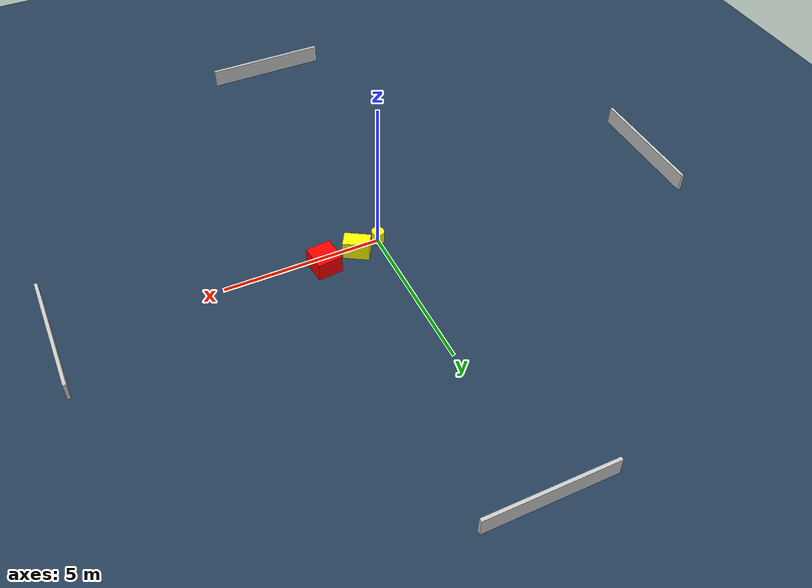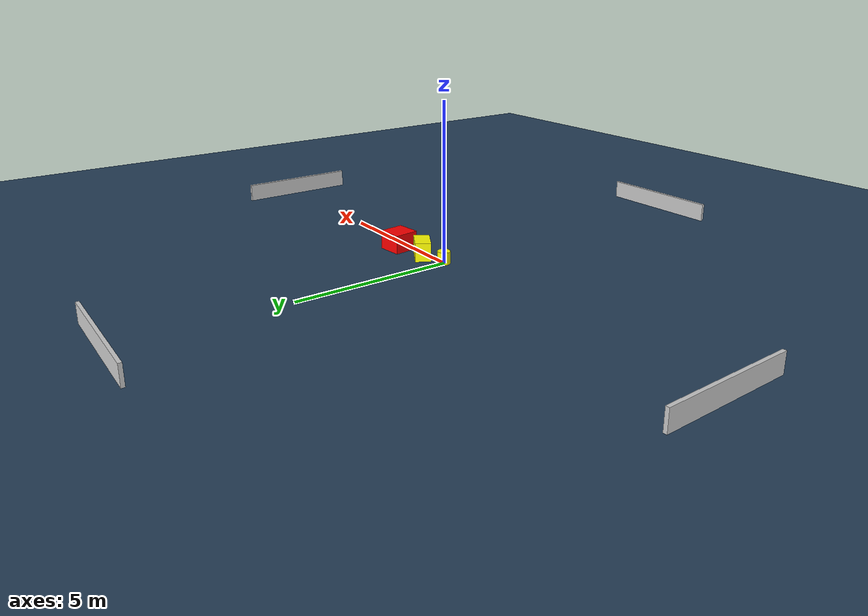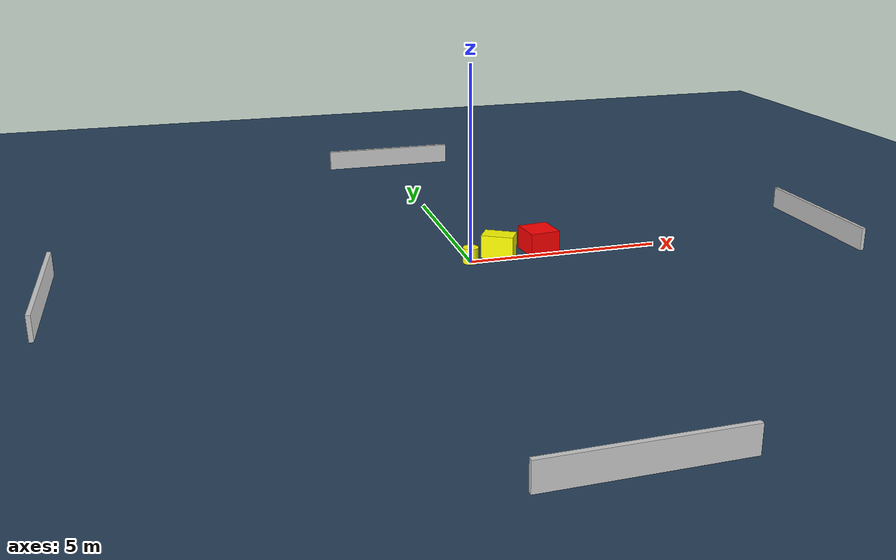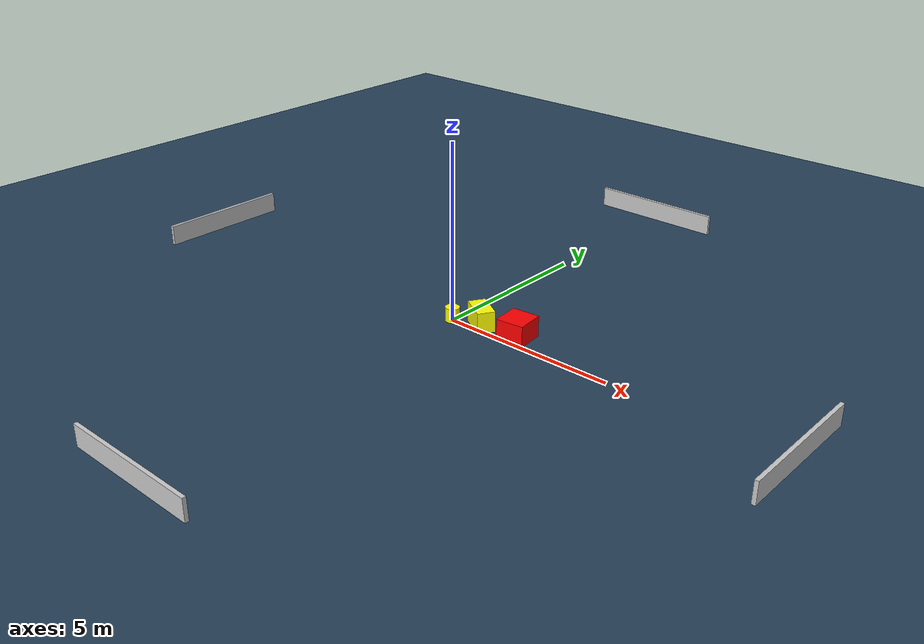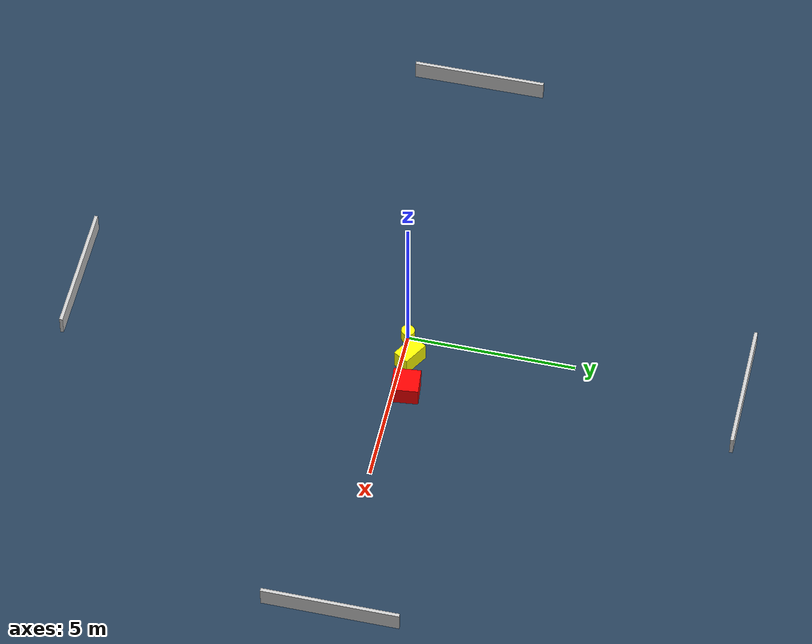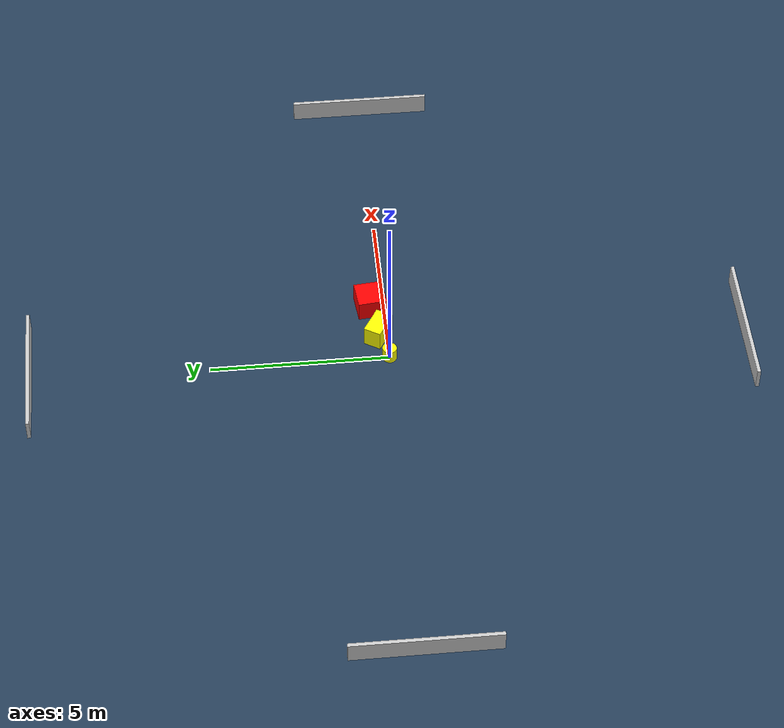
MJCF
<?xml version="1.0" ?>
<mujoco model="generated_environment">
  <option timestep="0.01" integrator="RK4" cone="elliptic"/>
  <default>
    <geom density="1"/>
  </default>
  <asset>
    <texture builtin="gradient" height="3072" name="skybox" rgb1="0.3 0.5 0.7" rgb2="0 0 0" type="skybox" width="512"/>
    <texture builtin="checker" height="300" name="groundplane" rgb1="0.2 0.3 0.4" rgb2="0.1 0.2 0.3" type="2d" width="300"/>
    <material name="groundplane" reflectance="0.2" texrepeat="5 5" texture="groundplane"/>
  </asset>
  <worldbody>
    <light dir="0 0 -1" directional="true" pos="0 0 1.5"/>
    <geom condim="3" friction="0.5 0.005 0.001" material="groundplane" name="floor" pos="0 0 0" size="0 0 0.05" type="plane"/>
    <body name="walls">
      <geom name="wall_1" condim="4" pos="-10.0 0.0 0.3" rgba="0.800000011920929 0.800000011920929 0.800000011920929 1.0" size="0.05 2.0 0.3" type="box"/>
      <geom name="wall_2" condim="4" pos="10.0 0.0 0.3" rgba="0.800000011920929 0.800000011920929 0.800000011920929 1.0" size="0.05 2.0 0.3" type="box"/>
      <geom name="wall_3" condim="4" pos="0.0 -10.0 0.3" rgba="0.800000011920929 0.800000011920929 0.800000011920929 1.0" size="2.0 0.05 0.3" type="box"/>
      <geom name="wall_4" condim="4" pos="0.0 10.0 0.3" rgba="0.800000011920929 0.800000011920929 0.800000011920929 1.0" size="2.0 0.05 0.3" type="box"/>
    </body>
    <body name="robot">
      <joint name="joint_x" type="slide" pos="0 0 0" axis="1 0 0"/>
      <joint name="joint_y" type="slide" pos="0 0 0" axis="0 1 0"/>
      <geom name="robot" type="cylinder" pos="0.0 0.0 0.2" size="0.2 0.2 0.0" mass="5.0" friction="1.0 0.005 0.0001" condim="4" rgba="1.0 1.0 0.0 1.0"/>
    </body>
    <body name="obstacle_1_movable">
      <geom name="obstacle_1_movable" condim="4" pos="0.8191336603385535 0.2403181375843851 0.3" euler="0 0 239.22542637303965" friction="0.0 0.005 0.001" rgba="1.0 1.0 0.0 1.0" size="0.24863762055449595 0.4094792595712967 0.3" type="box" mass="0.1"/>
      <joint type="free"/>
    </body>
    <body name="obstacle_2_static">
      <geom name="obstacle_2_static" condim="4" pos="1.9438437829478188 0.3729261486792407 0.3" euler="0 0 96.00986820603998" friction="0.0 0.005 0.001" rgba="1.0 0.0 0.0 1.0" size="0.4028014262782444 0.3949362798852586 0.3" type="box"/>
    </body>
  </worldbody>
  <actuator>
    <motor name="actuator_x" joint="joint_x" gear="1" ctrlrange="-1 1"/>
    <motor name="actuator_y" joint="joint_y" gear="1" ctrlrange="-1 1"/>
  </actuator>
</mujoco>
